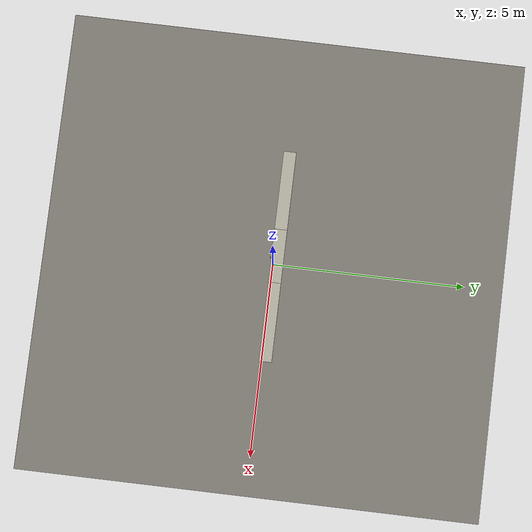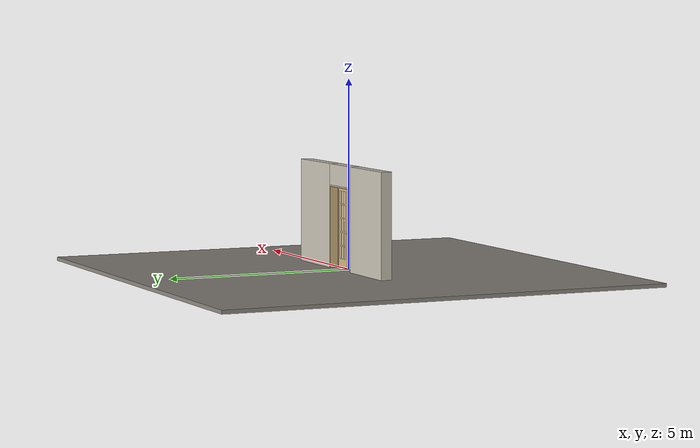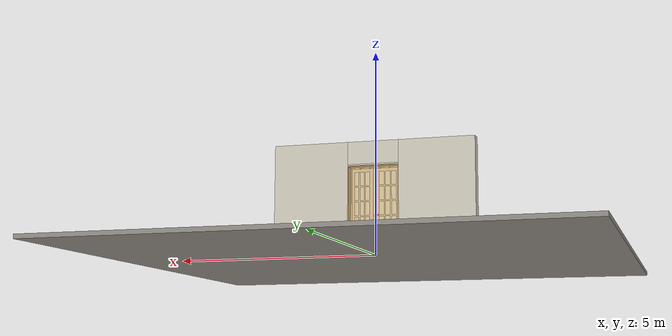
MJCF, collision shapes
<?xml version="1.0" ?>
<mujoco model="db0149_swing_double_full">
  <compiler angle="radian" meshdir="../../hardware" texturedir="../../textures" autolimits="true" inertiafromgeom="false"/>
  <option timestep="0.002" integrator="implicitfast" cone="elliptic" impratio="10" noslip_iterations="3">
    <flag multiccd="enable"/>
  </option>
  <size memory="16M"/>
  <default>
    <geom condim="4" solref="0.005 1" solimp="0.95 0.99 0.001"/>
    <joint solreflimit="0.005 1" solimplimit="0.95 0.99 0.001"/>
    <tendon solreflimit="0.005 1"/>
    <equality solref="0.002 1"/>
  </default>
  <visual>
    <headlight ambient="0.4 0.4 0.4" diffuse="0.7 0.7 0.7" specular="0.2 0.2 0.2"/>
    <quality shadowsize="4096"/>
    <map znear="0.01" zfar="60"/>
  </visual>
  <asset>
    <mesh name="handleset_beb5526ad2" file="handleset_beb5526ad2.obj"/>
    <mesh name="hinge_e22b26c0c1" file="hinge_e22b26c0c1.obj"/>
    <mesh name="hinge_jamb_e1d088f8dc" file="hinge_jamb_e1d088f8dc.obj"/>
    <mesh name="knob_d1888f6f03" file="knob_d1888f6f03.obj"/>
    <material name="mat_floor" rgba="0.55 0.53 0.5 1" specular="0.2" shininess="0.15" reflectance="0"/>
    <material name="mat_wall" rgba="0.78 0.76 0.7 1" specular="0.2" shininess="0.1" reflectance="0"/>
    <material name="mat_leaf_a" rgba="0.82 0.7 0.5 1" specular="0.2" shininess="0.45" reflectance="0"/>
    <material name="mat_glass" rgba="0.85 0.92 0.95 0.25" specular="0.2" shininess="0.95" reflectance="0.1"/>
    <material name="mat_hinge" rgba="0.65 0.66 0.68 1" specular="0.74" shininess="0.5" reflectance="0.36"/>
    <material name="mat_op_bronze" rgba="0.3 0.22 0.15 1" specular="0.74" shininess="0.5" reflectance="0.36"/>
    <material name="mat_op_brass" rgba="0.85 0.66 0.3 1" specular="0.8" shininess="0.75" reflectance="0.4"/>
    <material name="mat_trim" rgba="0.85 0.66 0.3 1" specular="0.8" shininess="0.75" reflectance="0.4"/>
    <material name="mat_bolt" rgba="0.85 0.66 0.3 1" specular="0.8" shininess="0.75" reflectance="0.4"/>
    <material name="mat_leaf_b" rgba="0.82 0.7 0.5 1" specular="0.2" shininess="0.45" reflectance="0"/>
    <material name="mat_frame" rgba="0.82 0.7 0.5 1" specular="0.2" shininess="0.45" reflectance="0"/>
    <texture name="skybox" type="skybox" builtin="gradient" rgb1="0.6 0.7 0.85" rgb2="0.9 0.92 0.95" width="256" height="256"/>
  </asset>
  <worldbody>
    <light name="sun" pos="1.5 -2.5 4" dir="-0.3 0.5 -0.8" directional="true" diffuse="0.8 0.8 0.8" specular="0.3 0.3 0.3" castshadow="true"/>
    <light name="fill" pos="-1.5 2.5 3" dir="0.3 -0.5 -0.7" directional="true" diffuse="0.35 0.35 0.4" castshadow="false"/>
    <camera name="robot_view" pos="0 -2.529812 1.812087" xyaxes="1 0 0 0 0.26963 0.962964" fovy="52"/>
    <camera name="far_view" pos="0 2.745812 1.812087" xyaxes="-1 0 0 0 -0.26963 0.962964" fovy="52"/>
    <camera name="iso" pos="-2.004737 -2.107762 2.234138" xyaxes="0.741536 -0.670913 0 0.242917 0.268487 0.932151" fovy="46"/>
    <camera name="detail_handle" pos="0.0735 -0.882 1.185" xyaxes="0.97561 0.219512 0 -0.070934 0.315262 0.94635" fovy="38"/>
    <geom name="floor" type="box" size="6 6 0.05" pos="0 0 -0.05" material="mat_floor" group="0" contype="1" conaffinity="1" friction="0.8 0.005 0.0001" density="2400"/>
    <geom name="wall_left" type="box" size="0.93325 0.15 1.3735" pos="-1.56675 0.108 1.3735" material="mat_wall" group="0" contype="1" conaffinity="1" friction="0.6 0.005 0.0001" density="800"/>
    <geom name="wall_right" type="box" size="0.93325 0.15 1.3735" pos="1.56675 0.108 1.3735" material="mat_wall" group="0" contype="1" conaffinity="1" friction="0.6 0.005 0.0001" density="800"/>
    <geom name="wall_header" type="box" size="0.6335 0.15 0.2755" pos="0 0.108 2.4715" material="mat_wall" group="0" contype="1" conaffinity="1" friction="0.6 0.005 0.0001" density="800"/>
    <geom name="hinge_0_jamb" type="mesh" mesh="hinge_jamb_e1d088f8dc" pos="-0.6115 -0.029 0.259" material="mat_hinge" group="1" contype="0" conaffinity="0" density="7850"/>
    <geom name="hinge_1_jamb" type="mesh" mesh="hinge_jamb_e1d088f8dc" pos="-0.6115 -0.029 1.076" material="mat_hinge" group="1" contype="0" conaffinity="0" density="7850"/>
    <geom name="hinge_2_jamb" type="mesh" mesh="hinge_jamb_e1d088f8dc" pos="-0.6115 -0.029 1.963" material="mat_hinge" group="1" contype="0" conaffinity="0" density="7850"/>
    <geom name="hinge_0_jamb_2" type="mesh" mesh="hinge_jamb_e1d088f8dc" pos="0.6115 -0.029 0.259" quat="0 0 1 0" material="mat_hinge" group="1" contype="0" conaffinity="0" density="7850"/>
    <geom name="hinge_1_jamb_2" type="mesh" mesh="hinge_jamb_e1d088f8dc" pos="0.6115 -0.029 1.076" quat="0 0 1 0" material="mat_hinge" group="1" contype="0" conaffinity="0" density="7850"/>
    <geom name="hinge_2_jamb_2" type="mesh" mesh="hinge_jamb_e1d088f8dc" pos="0.6115 -0.029 1.963" quat="0 0 1 0" material="mat_hinge" group="1" contype="0" conaffinity="0" density="7850"/>
    <geom name="jamb_l" type="box" size="0.0095 0.15 1.0735" pos="-0.624 0.108 1.0735" material="mat_frame" group="0" contype="1" conaffinity="1" friction="0.6 0.005 0.0001" density="300"/>
    <geom name="jamb_r" type="box" size="0.0095 0.15 1.0735" pos="0.624 0.108 1.0735" material="mat_frame" group="0" contype="1" conaffinity="1" friction="0.6 0.005 0.0001" density="300"/>
    <geom name="jamb_head" type="box" size="0.6335 0.15 0.0095" pos="0 0.108 2.1565" material="mat_frame" group="0" contype="1" conaffinity="1" friction="0.6 0.005 0.0001" density="300"/>
    <geom name="head_stud" type="box" size="0.6335 0.15 0.015" pos="0 0.108 2.181" material="mat_wall" group="0" contype="1" conaffinity="1" friction="0.6 0.005 0.0001" density="500"/>
    <geom name="stop_l" type="box" size="0.015 0.006 1.0735" pos="-0.5995 0.0285 1.0735" material="mat_frame" group="0" contype="1" conaffinity="1" friction="0.6 0.005 0.0001" density="300"/>
    <geom name="stop_r" type="box" size="0.015 0.006 1.0735" pos="0.5995 0.0285 1.0735" material="mat_frame" group="0" contype="1" conaffinity="1" friction="0.6 0.005 0.0001" density="300"/>
    <geom name="stop_head" type="box" size="0.6145 0.006 0.015" pos="0 0.0285 2.132" material="mat_frame" group="0" contype="1" conaffinity="1" friction="0.6 0.005 0.0001" density="300"/>
    <site name="approach_point" pos="0 -1.5 0" quat="1 0 0 0" size="0.05" rgba="0.2 0.9 0.2 0.5" group="4"/>
    <site name="goal_point" pos="0 1.5 0" quat="1 0 0 0" size="0.05" rgba="0.2 0.9 0.2 0.5" group="4"/>
    <site name="door_plane_center" pos="0 0 1.0735" quat="1 0 0 0" size="0.02" rgba="0.2 0.9 0.2 0.5" group="4"/>
    <site name="approach_point_2" pos="0 -1.5 0" quat="1 0 0 0" size="0.05" rgba="0.2 0.9 0.2 0.5" group="4"/>
    <site name="goal_point_2" pos="0 1.5 0" quat="1 0 0 0" size="0.05" rgba="0.2 0.9 0.2 0.5" group="4"/>
    <site name="door_plane_center_2" pos="0 0 1.0735" quat="1 0 0 0" size="0.02" rgba="0.2 0.9 0.2 0.5" group="4"/>
    <site name="approach_point_3" pos="0 -1.5 0" quat="1 0 0 0" size="0.05" rgba="0.2 0.9 0.2 0.5" group="4"/>
    <site name="goal_point_3" pos="0 1.5 0" quat="1 0 0 0" size="0.05" rgba="0.2 0.9 0.2 0.5" group="4"/>
    <site name="door_plane_center_3" pos="0 0 1.0735" quat="1 0 0 0" size="0.02" rgba="0.2 0.9 0.2 0.5" group="4"/>
    <body name="leaf_a" pos="-0.6145 0 0">
      <inertial pos="0.306687 -0.004565 1.064919" mass="22.948573" quat="0.499403 0.505018 0.494212 -0.501305" diaginertia="0.810905118 8.261596872 9.055345603"/>
      <joint name="leaf_a_hinge" type="hinge" axis="0 0 -1" pos="0.003 -0.029 0" limited="true" range="0 1.919862" solreflimit="0.02 1" damping="0.103362" frictionloss="0.359473" armature="0.02"/>
      <geom name="leaf_a_slab" type="box" size="0.305 0.022 1.067" pos="0.308 0 1.076" material="mat_leaf_a" group="0" contype="1" conaffinity="1" friction="0.35 0.005 0.0001" density="1"/>
      <geom name="leaf_a_glass_0" type="box" size="0.061667 0.0228 0.167256" pos="0.154667 0 0.410996" material="mat_glass" group="1" contype="0" conaffinity="0" density="1"/>
      <geom name="leaf_a_glass_1" type="box" size="0.061667 0.0228 0.167256" pos="0.308 0 0.410996" material="mat_glass" group="1" contype="0" conaffinity="0" density="1"/>
      <geom name="leaf_a_glass_2" type="box" size="0.061667 0.0228 0.167256" pos="0.461333 0 0.410996" material="mat_glass" group="1" contype="0" conaffinity="0" density="1"/>
      <geom name="leaf_a_glass_3" type="box" size="0.061667 0.0228 0.167256" pos="0.154667 0 0.775508" material="mat_glass" group="1" contype="0" conaffinity="0" density="1"/>
      <geom name="leaf_a_glass_4" type="box" size="0.061667 0.0228 0.167256" pos="0.308 0 0.775508" material="mat_glass" group="1" contype="0" conaffinity="0" density="1"/>
      <geom name="leaf_a_glass_5" type="box" size="0.061667 0.0228 0.167256" pos="0.461333 0 0.775508" material="mat_glass" group="1" contype="0" conaffinity="0" density="1"/>
      <geom name="leaf_a_glass_6" type="box" size="0.061667 0.0228 0.167256" pos="0.154667 0 1.14002" material="mat_glass" group="1" contype="0" conaffinity="0" density="1"/>
      <geom name="leaf_a_glass_7" type="box" size="0.061667 0.0228 0.167256" pos="0.308 0 1.14002" material="mat_glass" group="1" contype="0" conaffinity="0" density="1"/>
      <geom name="leaf_a_glass_8" type="box" size="0.061667 0.0228 0.167256" pos="0.461333 0 1.14002" material="mat_glass" group="1" contype="0" conaffinity="0" density="1"/>
      <geom name="leaf_a_glass_9" type="box" size="0.061667 0.0228 0.167256" pos="0.154667 0 1.504532" material="mat_glass" group="1" contype="0" conaffinity="0" density="1"/>
      <geom name="leaf_a_glass_10" type="box" size="0.061667 0.0228 0.167256" pos="0.308 0 1.504532" material="mat_glass" group="1" contype="0" conaffinity="0" density="1"/>
      <geom name="leaf_a_glass_11" type="box" size="0.061667 0.0228 0.167256" pos="0.461333 0 1.504532" material="mat_glass" group="1" contype="0" conaffinity="0" density="1"/>
      <geom name="leaf_a_glass_12" type="box" size="0.061667 0.0228 0.167256" pos="0.154667 0 1.869044" material="mat_glass" group="1" contype="0" conaffinity="0" density="1"/>
      <geom name="leaf_a_glass_13" type="box" size="0.061667 0.0228 0.167256" pos="0.308 0 1.869044" material="mat_glass" group="1" contype="0" conaffinity="0" density="1"/>
      <geom name="leaf_a_glass_14" type="box" size="0.061667 0.0228 0.167256" pos="0.461333 0 1.869044" material="mat_glass" group="1" contype="0" conaffinity="0" density="1"/>
      <geom name="hinge_0" type="mesh" mesh="hinge_e22b26c0c1" pos="0.003 -0.029 0.259" material="mat_hinge" group="1" contype="0" conaffinity="0" density="7850"/>
      <geom name="hinge_1" type="mesh" mesh="hinge_e22b26c0c1" pos="0.003 -0.029 1.076" material="mat_hinge" group="1" contype="0" conaffinity="0" density="7850"/>
      <geom name="hinge_2" type="mesh" mesh="hinge_e22b26c0c1" pos="0.003 -0.029 1.963" material="mat_hinge" group="1" contype="0" conaffinity="0" density="7850"/>
      <geom name="leaf_a_handleset_n" type="mesh" mesh="handleset_beb5526ad2" pos="0.508 -0.022 0.905" quat="0.707107 0.707107 0 0" material="mat_op_bronze" group="1" contype="0" conaffinity="0" density="3000"/>
      <geom name="leaf_a_handleset_col_n" type="capsule" size="0.011 0.09" pos="0.508 -0.082 0.905" material="mat_op_bronze" group="3" contype="1" conaffinity="1" rgba="0.8 0.3 0.3 0.25" friction="0.7 0.01 0.0001" density="3000"/>
      <geom name="leaf_a_latch_bolt_faceplate" type="box" size="0.0006 0.01235 0.0267" pos="0.6124 0 0.965" material="mat_bolt" group="1" contype="0" conaffinity="0" density="8500"/>
      <site name="leaf_a_handleset_grip_n" pos="0.508 -0.082 0.905" quat="1 0 0 0" size="0.012" rgba="0.2 0.9 0.2 0.5" group="4"/>
      <site name="leaf_a_edge_mid" pos="0.613 0 1.067" quat="1 0 0 0" size="0.02" rgba="0.2 0.9 0.2 0.5" group="4"/>
      <body name="leaf_a_handle" pos="0.543 0 0.965">
        <inertial pos="0 0.052948 0" mass="0.60261" quat="0.5 0.5 0.5 0.5" diaginertia="0.000156736 0.000451151 0.000451151"/>
        <joint name="leaf_a_handle_hinge" type="hinge" axis="0 -1 0" limited="true" range="0 0.87" damping="0.142525" frictionloss="0.038" stiffness="0.5" springref="-0.5" armature="0.01"/>
        <geom name="leaf_a_handle_spindle" type="cylinder" size="0.006 0.03" pos="0 0 0" quat="0.707107 -0.707107 0 0" material="mat_op_brass" group="1" contype="0" conaffinity="0" density="7850"/>
        <geom name="leaf_a_handle_knob_p" type="mesh" mesh="knob_d1888f6f03" pos="0 0.022 0" quat="-0.707107 0.707107 0 0" material="mat_op_brass" group="1" contype="0" conaffinity="0" density="3000"/>
        <geom name="leaf_a_handle_knob_col_p" type="sphere" size="0.0243" pos="0 0.0685 0" material="mat_op_brass" group="0" contype="1" conaffinity="1" friction="0.9 0.01 0.0001" density="3000"/>
        <geom name="leaf_a_handle_knob_neck_p" type="cylinder" size="0.011 0.012" pos="0 0.034 0" quat="0.707107 -0.707107 0 0" material="mat_op_brass" group="3" contype="1" conaffinity="1" rgba="0.8 0.3 0.3 0.25" friction="0.6 0.005 0.0001" density="3000"/>
        <site name="leaf_a_handle_grip_p" pos="0 0.0685 0" quat="1 0 0 0" size="0.012" rgba="0.2 0.9 0.2 0.5" group="4"/>
      </body>
      <body name="leaf_a_thumbpiece" pos="0.508 -0.04 1.077">
        <inertial pos="0 0.004 0" mass="0.05184" quat="-0.5 0.5 0.5 0.5" diaginertia="0.000006981 0.000007488 0.000009124"/>
        <joint name="leaf_a_thumbpiece_hinge" type="hinge" axis="-1 0 0" pos="0 0 0.02" limited="true" range="0 0.35" damping="0.219407" frictionloss="0.058" stiffness="1.2" springref="-0.416667" armature="0.01"/>
        <geom name="leaf_a_thumbpiece_geom" type="box" size="0.018 0.004 0.02" pos="0 0 0" material="mat_op_bronze" group="0" contype="1" conaffinity="1" friction="0.6 0.005 0.0001" density="3000"/>
        <geom name="leaf_a_thumbpiece_boss" type="box" size="0.01 0.012 0.006" pos="0 0.012 0" material="mat_op_bronze" group="1" contype="0" conaffinity="0" density="3000"/>
        <site name="leaf_a_thumb_push" pos="0 -0.005 0.01" quat="1 0 0 0" size="0.01" rgba="0.2 0.9 0.2 0.5" group="4"/>
      </body>
      <body name="leaf_a_latch_bolt" pos="0.613 0 0.965">
        <inertial pos="-0.00865 0 0" mass="0.041419" quat="0.92388 -0.382683 0 0" diaginertia="0.000000798 0.000005598 0.000005598"/>
        <joint name="leaf_a_latch_bolt_slide" type="slide" axis="-1 0 0" limited="true" range="0 0.0127" damping="2" frictionloss="0.3" stiffness="300" springref="-0.008333" armature="0.1"/>
        <geom name="leaf_a_latch_bolt_capsule" type="capsule" size="0.00635 0.015" pos="-0.00865 0 0" quat="0.707107 0 0.707107 0" material="mat_bolt" group="0" contype="1" conaffinity="1" friction="0.2 0.005 0.0001" density="8500"/>
      </body>
    </body>
    <body name="leaf_b" pos="0.6145 0 0">
      <inertial pos="-0.262544 -0.001014 1.077438" mass="21.6538" quat="0.502147 -0.497364 0.502598 0.497869" diaginertia="0.606979458 8.34752822 8.946696427"/>
      <joint name="leaf_b_hinge" type="hinge" axis="0 0 1" pos="-0.003 -0.029 0" limited="true" range="0 0.001" solreflimit="0.02 1" damping="0.103362" frictionloss="0.359473" armature="0.02"/>
      <geom name="leaf_b_edge_965_wall_n" type="box" size="0.03 0.007075 0.0167" pos="-0.583 0.014925 0.965" material="mat_leaf_b" group="0" contype="1" conaffinity="1" friction="0.6 0.005 0.0001" density="1"/>
      <geom name="leaf_b_edge_965_wall_p" type="box" size="0.03 0.008 0.0167" pos="-0.583 -0.01585 0.965" material="mat_leaf_b" group="0" contype="1" conaffinity="1" friction="0.6 0.005 0.0001" density="1"/>
      <geom name="leaf_b_edge_965_ramp" type="box" size="0.03 0.01649 0.0167" pos="-0.578861 -0.026388 0.965" quat="0.977148 0 0 0.212558" material="mat_leaf_b" group="0" contype="1" conaffinity="1" friction="0.12 0.005 0.0001" density="1"/>
      <geom name="leaf_b_edge_965_back" type="box" size="0.02165 0.00785 0.0167" pos="-0.57465 0 0.965" material="mat_leaf_b" group="0" contype="1" conaffinity="1" friction="0.6 0.005 0.0001" density="1"/>
      <geom name="leaf_b_edge_seg_0" type="box" size="0.03 0.022 0.46965" pos="-0.583 0 0.47865" material="mat_leaf_b" group="0" contype="1" conaffinity="1" friction="0.6 0.005 0.0001" density="1"/>
      <geom name="leaf_b_edge_seg_1" type="box" size="0.03 0.022 0.58065" pos="-0.583 0 1.56235" material="mat_leaf_b" group="0" contype="1" conaffinity="1" friction="0.6 0.005 0.0001" density="1"/>
      <geom name="leaf_b_slab" type="box" size="0.275 0.022 1.067" pos="-0.278 0 1.076" material="mat_leaf_b" group="0" contype="1" conaffinity="1" friction="0.35 0.005 0.0001" density="1"/>
      <geom name="leaf_b_glass_0" type="box" size="0.051667 0.0228 0.167256" pos="-0.144667 0 0.410996" material="mat_glass" group="1" contype="0" conaffinity="0" density="1"/>
      <geom name="leaf_b_glass_1" type="box" size="0.051667 0.0228 0.167256" pos="-0.278 0 0.410996" material="mat_glass" group="1" contype="0" conaffinity="0" density="1"/>
      <geom name="leaf_b_glass_2" type="box" size="0.051667 0.0228 0.167256" pos="-0.411333 0 0.410996" material="mat_glass" group="1" contype="0" conaffinity="0" density="1"/>
      <geom name="leaf_b_glass_3" type="box" size="0.051667 0.0228 0.167256" pos="-0.144667 0 0.775508" material="mat_glass" group="1" contype="0" conaffinity="0" density="1"/>
      <geom name="leaf_b_glass_4" type="box" size="0.051667 0.0228 0.167256" pos="-0.278 0 0.775508" material="mat_glass" group="1" contype="0" conaffinity="0" density="1"/>
      <geom name="leaf_b_glass_5" type="box" size="0.051667 0.0228 0.167256" pos="-0.411333 0 0.775508" material="mat_glass" group="1" contype="0" conaffinity="0" density="1"/>
      <geom name="leaf_b_glass_6" type="box" size="0.051667 0.0228 0.167256" pos="-0.144667 0 1.14002" material="mat_glass" group="1" contype="0" conaffinity="0" density="1"/>
      <geom name="leaf_b_glass_7" type="box" size="0.051667 0.0228 0.167256" pos="-0.278 0 1.14002" material="mat_glass" group="1" contype="0" conaffinity="0" density="1"/>
      <geom name="leaf_b_glass_8" type="box" size="0.051667 0.0228 0.167256" pos="-0.411333 0 1.14002" material="mat_glass" group="1" contype="0" conaffinity="0" density="1"/>
      <geom name="leaf_b_glass_9" type="box" size="0.051667 0.0228 0.167256" pos="-0.144667 0 1.504532" material="mat_glass" group="1" contype="0" conaffinity="0" density="1"/>
      <geom name="leaf_b_glass_10" type="box" size="0.051667 0.0228 0.167256" pos="-0.278 0 1.504532" material="mat_glass" group="1" contype="0" conaffinity="0" density="1"/>
      <geom name="leaf_b_glass_11" type="box" size="0.051667 0.0228 0.167256" pos="-0.411333 0 1.504532" material="mat_glass" group="1" contype="0" conaffinity="0" density="1"/>
      <geom name="leaf_b_glass_12" type="box" size="0.051667 0.0228 0.167256" pos="-0.144667 0 1.869044" material="mat_glass" group="1" contype="0" conaffinity="0" density="1"/>
      <geom name="leaf_b_glass_13" type="box" size="0.051667 0.0228 0.167256" pos="-0.278 0 1.869044" material="mat_glass" group="1" contype="0" conaffinity="0" density="1"/>
      <geom name="leaf_b_glass_14" type="box" size="0.051667 0.0228 0.167256" pos="-0.411333 0 1.869044" material="mat_glass" group="1" contype="0" conaffinity="0" density="1"/>
      <geom name="hinge_0_2" type="mesh" mesh="hinge_e22b26c0c1" pos="-0.003 -0.029 0.259" quat="0 0 1 0" material="mat_hinge" group="1" contype="0" conaffinity="0" density="7850"/>
      <geom name="hinge_1_2" type="mesh" mesh="hinge_e22b26c0c1" pos="-0.003 -0.029 1.076" quat="0 0 1 0" material="mat_hinge" group="1" contype="0" conaffinity="0" density="7850"/>
      <geom name="hinge_2_2" type="mesh" mesh="hinge_e22b26c0c1" pos="-0.003 -0.029 1.963" quat="0 0 1 0" material="mat_hinge" group="1" contype="0" conaffinity="0" density="7850"/>
      <site name="leaf_b_edge_mid" pos="-0.613 0 1.067" quat="1 0 0 0" size="0.02" rgba="0.2 0.9 0.2 0.5" group="4"/>
    </body>
  </worldbody>
  <tendon>
    <fixed name="leaf_a_thumb_coupling" limited="true" range="0 10">
      <joint joint="leaf_a_latch_bolt_slide" coef="1"/>
      <joint joint="leaf_a_thumbpiece_hinge" coef="-0.039688"/>
    </fixed>
    <fixed name="leaf_a_latch_bolt_coupling" limited="true" range="0 10">
      <joint joint="leaf_a_latch_bolt_slide" coef="1"/>
      <joint joint="leaf_a_handle_hinge" coef="-0.015679"/>
    </fixed>
  </tendon>
  <sensor>
    <jointpos name="leaf_a_hinge_pos" joint="leaf_a_hinge"/>
    <jointvel name="leaf_a_hinge_vel" joint="leaf_a_hinge"/>
    <jointpos name="leaf_a_handle_hinge_pos" joint="leaf_a_handle_hinge"/>
    <jointvel name="leaf_a_handle_hinge_vel" joint="leaf_a_handle_hinge"/>
    <jointpos name="leaf_a_thumbpiece_hinge_pos" joint="leaf_a_thumbpiece_hinge"/>
    <jointvel name="leaf_a_thumbpiece_hinge_vel" joint="leaf_a_thumbpiece_hinge"/>
    <jointpos name="leaf_a_latch_bolt_slide_pos" joint="leaf_a_latch_bolt_slide"/>
    <jointvel name="leaf_a_latch_bolt_slide_vel" joint="leaf_a_latch_bolt_slide"/>
    <jointpos name="leaf_b_hinge_pos" joint="leaf_b_hinge"/>
    <jointvel name="leaf_b_hinge_vel" joint="leaf_b_hinge"/>
  </sensor>
</mujoco>
